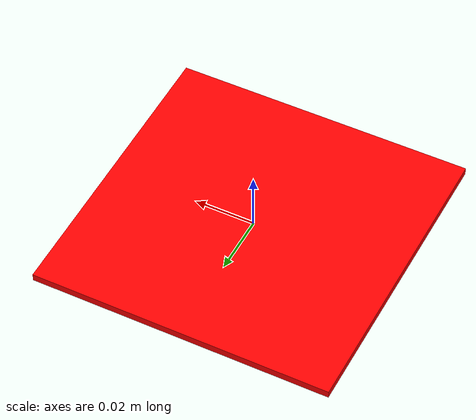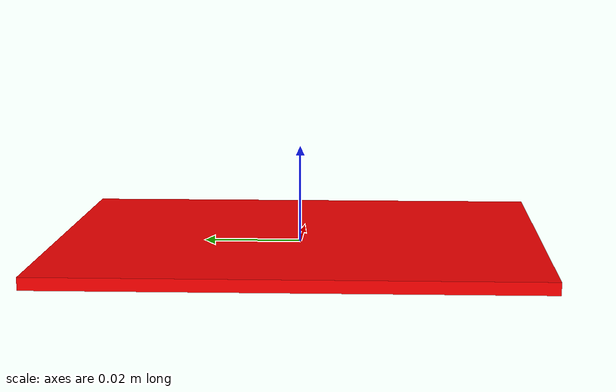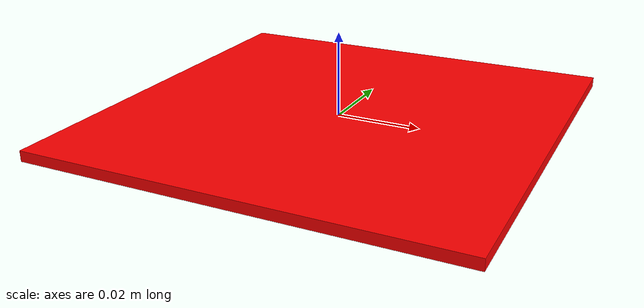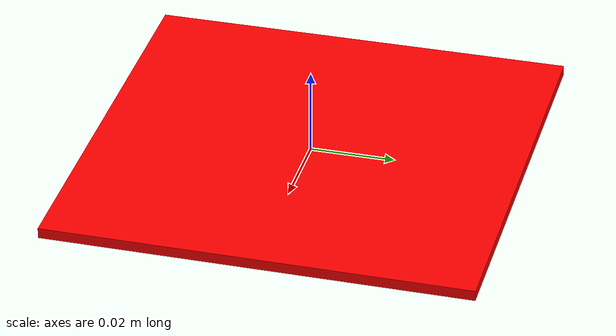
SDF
<sdf version='1.6'>
  <model name='CFRP'>
  <static>true</static>
    <link name='cfrp_base'>
      <pose>0 0 0 0 -0 0</pose>
      <collision name='collision'>
        <geometry>
          <box>
            <size>0.1 0.1 0.01</size>
          </box>
        </geometry>
      </collision>

      <visual name='visual'>
        <geometry>
          <box>
            <size>0.1 0.1 0.0025</size>
          </box>
        </geometry>
        <material>
          <ambient>1 0 0 1</ambient>
          <diffuse>1 0 0 1</diffuse>
          <specular>0.1 0.1 0.1 1</specular>
          <emissive>0 0 0 0</emissive>
        </material>
      </visual>
    </link>
  </model>
</sdf>
